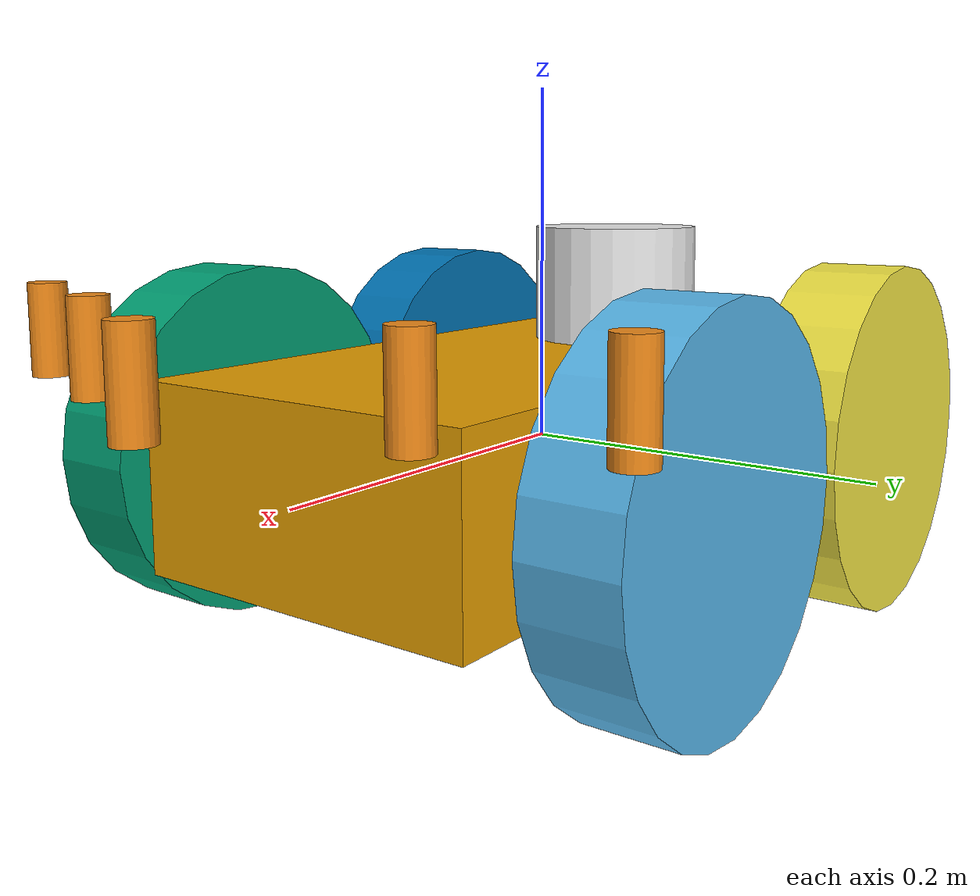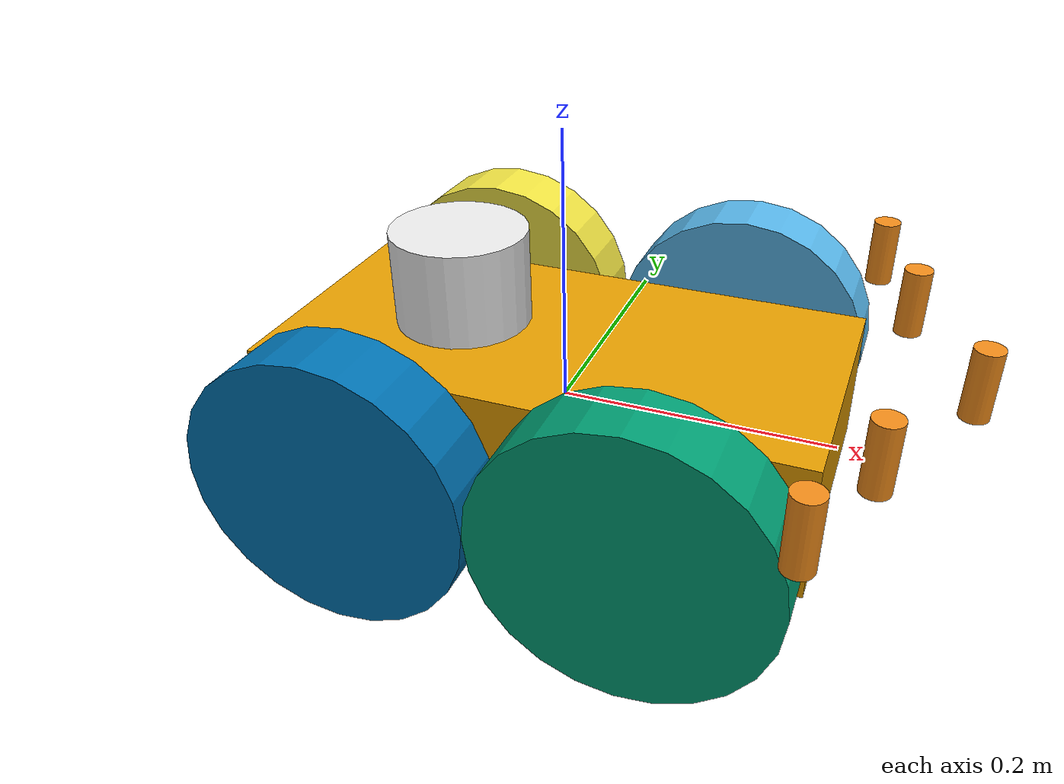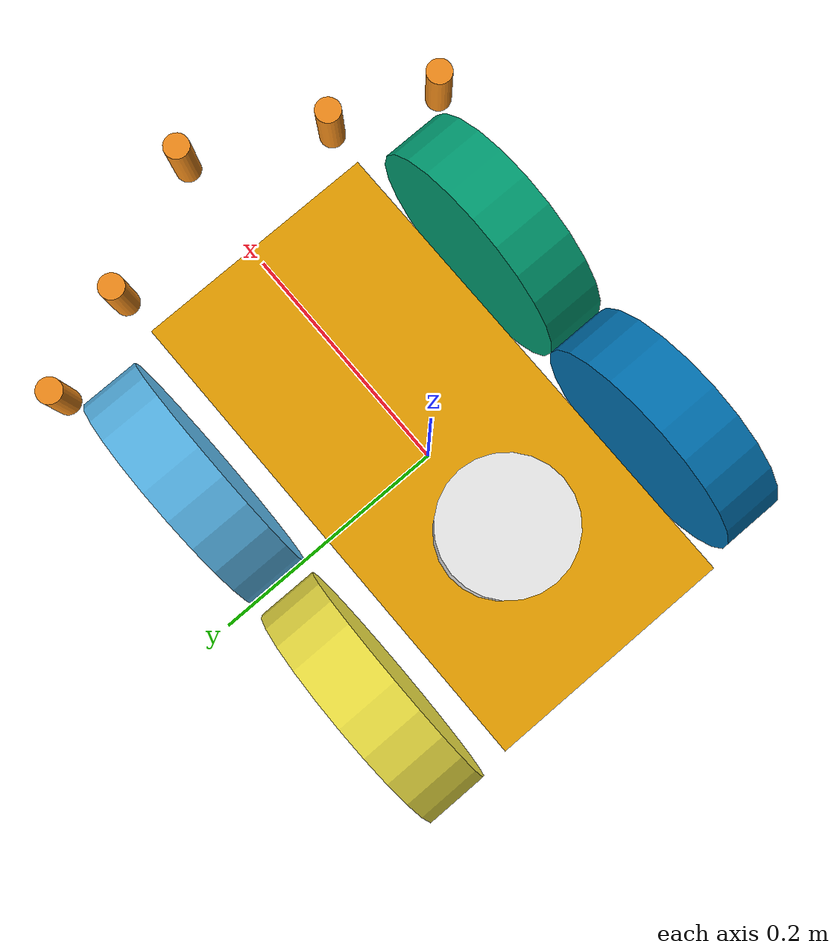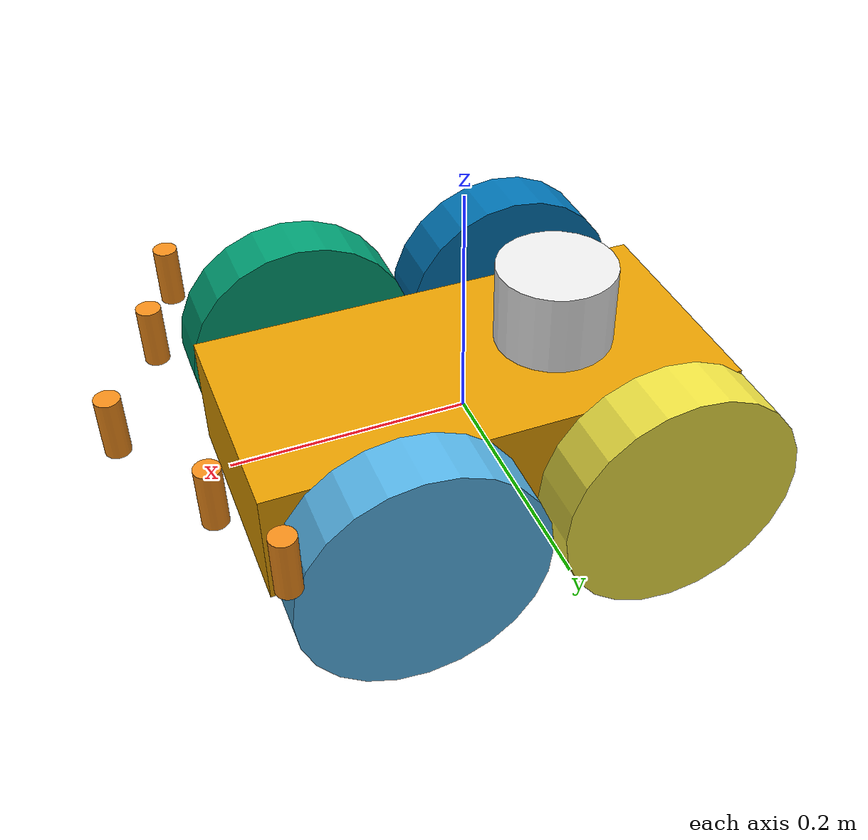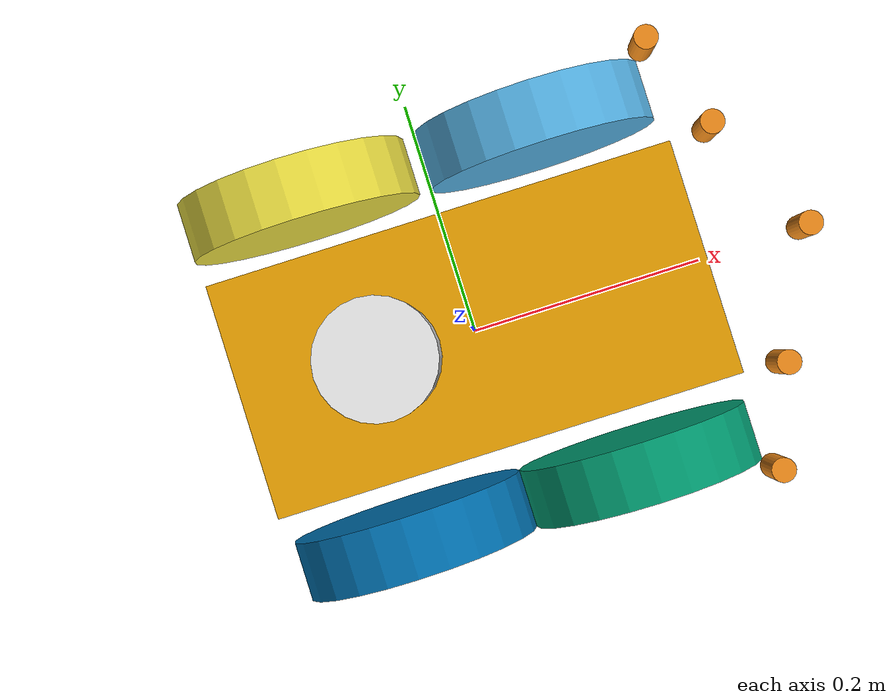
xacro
<?xml version='1.0'?>

<robot name="mybot" xmlns:xacro="http://www.ros.org/wiki/xacro">

<xacro:include filename="$(find mybot_description)/urdf/mybot.gazebo" />
<xacro:include filename="$(find mybot_description)/urdf/materials.xacro" />
<xacro:include filename="$(find mybot_description)/urdf/macro.xacro" />

  <link name="chassis">
    <pose>0 0 0.1 0 0 0</pose>
    <inertial>
      <mass value="10.0"/>
      <origin xyz="0.0 0 0.1" rpy=" 0 0 0"/>
      <inertia
          ixx="0.09" ixy="0" ixz="0"
          iyy="0.09" iyz="0"
          izz="0.09"
      />
    </inertial>

    <collision name='collision'>
      <geometry>
        <box size=".4 .2 .1"/>
      </geometry>
    </collision>

    <visual name='chassis_visual'>
      <origin xyz="0 0 0" rpy=" 0 0 0"/>
      <geometry>
        <box size=".4 .2 .1"/>
      </geometry>
    </visual>
  </link>

  <link name="left_wheel">
    <collision name="collision">
      <origin xyz="0 0 0" rpy="0 1.5707 1.5707"/>
      <geometry>
        <cylinder radius="0.1" length="0.05"/>
      </geometry>
    </collision>
    <visual name="left_wheel_visual">
      <origin xyz="0 0 0" rpy="0 1.5707 1.5707"/>
      <geometry>
        <cylinder radius="0.1" length="0.05"/>
      </geometry>
    </visual>
    <inertial>
      <origin xyz="0 0 0" rpy="0 1.5707 1.5707"/>
      <mass value="5"/>
      <cylinder_inertia m="5" r="0.1" h="0.05"/>
      <inertia
        ixx="0.013" ixy="0.0" ixz="0.0"
        iyy="0.013" iyz="0.0"
        izz="0.013"/>
    </inertial>
  </link>

  <link name="right_wheel">
    <collision name="collision">
      <origin xyz="0 0 0" rpy="0 1.5707 1.5707"/>
      <geometry>
        <cylinder radius="0.1" length="0.05"/>
      </geometry>
    </collision>
    <visual name="right_wheel_visual">
      <origin xyz="0 0 0" rpy="0 1.5707 1.5707"/>
      <geometry>
        <cylinder radius="0.1" length="0.05"/>
      </geometry>
    </visual>
    <inertial>
      <origin xyz="0 0 0" rpy="0 1.5707 1.5707"/>
      <mass value="5"/>
      <cylinder_inertia m="5" r="0.1" h="0.05"/>
      <inertia
        ixx="0.013" ixy="0.0" ixz="0.0"
        iyy="0.013" iyz="0.0"
        izz="0.013"/>
    </inertial>
  </link>

  <link name="left_fwheel">
    <collision name="collision">
      <origin xyz="0 0 0" rpy="0 1.5707 1.5707"/>
      <geometry>
        <cylinder radius="0.1" length="0.05"/>
      </geometry>
    </collision>
    <visual name="left_wheel_fvisual">
      <origin xyz="0 0 0" rpy="0 1.5707 1.5707"/>
      <geometry>
        <cylinder radius="0.1" length="0.05"/>
      </geometry>
    </visual>
    <inertial>
      <origin xyz="0 0 0" rpy="0 1.5707 1.5707"/>
      <mass value="5"/>
      <cylinder_inertia m="5" r="0.1" h="0.05"/>
      <inertia
        ixx="0.013" ixy="0.0" ixz="0.0"
        iyy="0.013" iyz="0.0"
        izz="0.013"/>
    </inertial>
  </link>

  <link name="right_fwheel">
    <collision name="collision">
      <origin xyz="0 0 0" rpy="0 1.5707 1.5707"/>
      <geometry>
        <cylinder radius="0.1" length="0.05"/>
      </geometry>
    </collision>
    <visual name="right_wheel_fvisual">
      <origin xyz="0 0 0" rpy="0 1.5707 1.5707"/>
      <geometry>
        <cylinder radius="0.1" length="0.05"/>
      </geometry>
    </visual>
    <inertial>
      <origin xyz="0 0 0" rpy="0 1.5707 1.5707"/>
      <mass value="5"/>
      <cylinder_inertia m="5" r="0.1" h="0.05"/>
      <inertia
        ixx="0.013" ixy="0.0" ixz="0.0"
        iyy="0.013" iyz="0.0"
        izz="0.013"/>
    </inertial>
  </link>

  <joint type="continuous" name="left_wheel_hinge">
    <origin xyz="0.1 0.15 0" rpy="0 0 0"/>
    <child link="left_wheel"/>
    <parent link="chassis"/>
    <axis xyz="0 1 0" rpy="0 0 0"/>
    <limit effort="100" velocity="100"/>
    <joint_properties damping="0.0" friction="1.0"/>
  </joint>

  <joint type="continuous" name="right_wheel_hinge">
    <origin xyz="0.1 -0.15 0" rpy="0 0 0"/>
    <child link="right_wheel"/>
    <parent link="chassis"/>
    <axis xyz="0 1 0" rpy="0 0 0"/>
    <limit effort="100" velocity="100"/>
    <joint_properties damping="0.0" friction="1.0"/>
  </joint>

 <joint type="continuous" name="left_wheel_fhinge">
    <origin xyz="-0.11 0.15 0" rpy="0 0 0"/>
    <child link="left_fwheel"/>
    <parent link="chassis"/>
    <axis xyz="0 1 0" rpy="0 0 0"/>
    <limit effort="100" velocity="100"/>
    <joint_properties damping="0.0" friction="1.0"/>
  </joint>

  <joint type="continuous" name="right_wheel_fhinge">
    <origin xyz="-0.1 -0.15 0" rpy="0 0 0"/>
    <child link="right_fwheel"/>
    <parent link="chassis"/>
    <axis xyz="0 1 0" rpy="0 0 0"/>
    <limit effort="100" velocity="100"/>
    <joint_properties damping="0.0" friction="1"/>
  </joint>

<!--========================== Link for laser 1 ========================= -->

  <!-- Link for laser -->
  <link name="sensor_laser_1">
    <inertial>
      <origin xyz="0 0 0" rpy="0 0 0" />
      <mass value="0.1" />
      <xacro:cylinder_inertia mass="0.5" r="0.01" l="0.05" />
    </inertial>

    <visual>
      <origin xyz="0 0 0" rpy="0 0 0" />
      <geometry>
        <cylinder radius="0.01" length="0.05"/>
      </geometry>
      <material name="orange" />
      <material name="laserLight" />
    </visual>

    <collision>
      <origin xyz="0 0 0" rpy="0 0 0"/>
      <geometry>
        <cylinder radius="0.01" length="0.05"/>
      </geometry>
      <material name="collisionLaser" />
    </collision>
  </link>

  <!--========================== Link for laser 2 ========================= -->

  <link name="sensor_laser_2">
    <inertial>
      <origin xyz="0 0 0" rpy="0 0 0" />
      <mass value="0.1" />
      <xacro:cylinder_inertia mass="0.5" r="0.01" l="0.05" />
    </inertial>

    <visual>
      <origin xyz="0 0 0" rpy="0 0 0" />
      <geometry>
        <cylinder radius="0.01" length="0.05"/>
      </geometry>
      <material name="orange" />
      <material name="laserLight" />
    </visual>

    <collision>
      <origin xyz="0 0 0" rpy="0 0 0"/>
      <geometry>
        <cylinder radius="0.01" length="0.05"/>
      </geometry>
      <material name="collisionLaser" />
    </collision>
  </link>

  <!--========================== Link for laser 3 ========================= -->

  <link name="sensor_laser_3">
    <inertial>
      <origin xyz="0 0 0" rpy="0 0 0" />
      <mass value="0.1" />
      <xacro:cylinder_inertia mass="0.5" r="0.01" l="0.05" />
    </inertial>

    <visual>
      <origin xyz="0 0 0" rpy="0 0 0" />
      <geometry>
        <cylinder radius="0.01" length="0.05"/>
      </geometry>
      <material name="orange" />
      <material name="laserLight" />
    </visual>

    <collision>
      <origin xyz="0 0 0" rpy="0 0 0"/>
      <geometry>
        <cylinder radius="0.01" length="0.05"/>
      </geometry>
      <material name="collisionLaser" />
    </collision>
  </link>

<!--========================== Link for laser 4 ========================= -->

<link name="sensor_laser_4">
  <inertial>
    <origin xyz="0 0 0" rpy="0 0 0" />
    <mass value="0.1" />
    <xacro:cylinder_inertia mass="0.5" r="0.01" l="0.05" />
  </inertial>
  <visual>
    <origin xyz="0 0 0" rpy="0 0 0" />
    <geometry>
      <cylinder radius="0.01" length="0.05"/>
    </geometry>
    <material name="orange" />
    <material name="laserLight" />
  </visual>
  <collision>
    <origin xyz="0 0 0" rpy="0 0 0"/>
    <geometry>
      <cylinder radius="0.01" length="0.05"/>
    </geometry>
    <material name="collisionLaser" />
  </collision>
</link>

<!--========================== Link for laser 5 ========================= -->

<link name="sensor_laser_5">
  <inertial>
    <origin xyz="0 0 0" rpy="0 0 0" />
    <mass value="0.1" />
    <xacro:cylinder_inertia mass="0.5" r="0.01" l="0.05" />
  </inertial>

  <visual>
    <origin xyz="0 0 0" rpy="0 0 0" />
    <geometry>
      <cylinder radius="0.01" length="0.05"/>
    </geometry>
    <material name="orange" />
    <material name="laserLight" />
  </visual>

  <collision>
    <origin xyz="0 0 0" rpy="0 0 0"/>
    <geometry>
      <cylinder radius="0.01" length="0.05"/>
    </geometry>
    <material name="collisionLaser" />
  </collision>
</link>

<link name="imu_link">
  <inertial>
    <origin xyz="0 0 0" rpy="0 0 0" />
    <mass value="4" />
    <xacro:cylinder_inertia mass="0.5" r="0.05" l="0.1" />
  </inertial>
  <visual>
    <origin xyz="0 0 0" rpy="0 0 0" />
    <geometry>
      <cylinder radius="0.05" length="0.1"/>
    </geometry>
    <material name="white" />
  </visual>
  <collision>
    <origin xyz="0 0 0" rpy="0 0 0"/>
    <geometry>
      <cylinder radius="0.01" length="0.05"/>
    </geometry>
    <material name="collisionLaser" />
  </collision>

</link>

<joint name="joint_imu" type="fixed">
  <origin xyz="-0.08 0 0.07" rpy="0 0 0"/>
  <parent link="chassis"/>
  <child link="imu_link"/>
</joint>

  <!-- Joint for laser -->
  <joint name="joint_sensor_laser_1" type="fixed">
    <origin xyz="0.28 0 0.07" rpy="0 0 0"/>
    <parent link="chassis"/>
    <child link="sensor_laser_1"/>
  </joint>

<!-- Joint for laser -->
  <joint name="joint_sensor_laser_2" type="fixed">
    <origin xyz="0.23 0.1 0.07" rpy="0 0 0"/>
    <parent link="chassis"/>
    <child link="sensor_laser_2"/>
  </joint>
<!-- Joint for laser -->
<joint name="joint_sensor_laser_3" type="fixed">
  <origin xyz="0.2 0.18 0.07" rpy="0 0 0"/>
  <parent link="chassis"/>
  <child link="sensor_laser_3"/>
</joint>

<!-- Joint for laser -->
<joint name="joint_sensor_laser_4" type="fixed">
  <origin xyz="0.23 -0.1 0.07" rpy="0 0 0"/>
  <parent link="chassis"/>
  <child link="sensor_laser_4"/>
</joint>

<!-- Joint for laser -->
<joint name="joint_sensor_laser_5" type="fixed">
  <origin xyz="0.2 -0.18 0.07" rpy="0 0 0"/>
  <parent link="chassis"/>
  <child link="sensor_laser_5"/>
</joint>

</robot>
